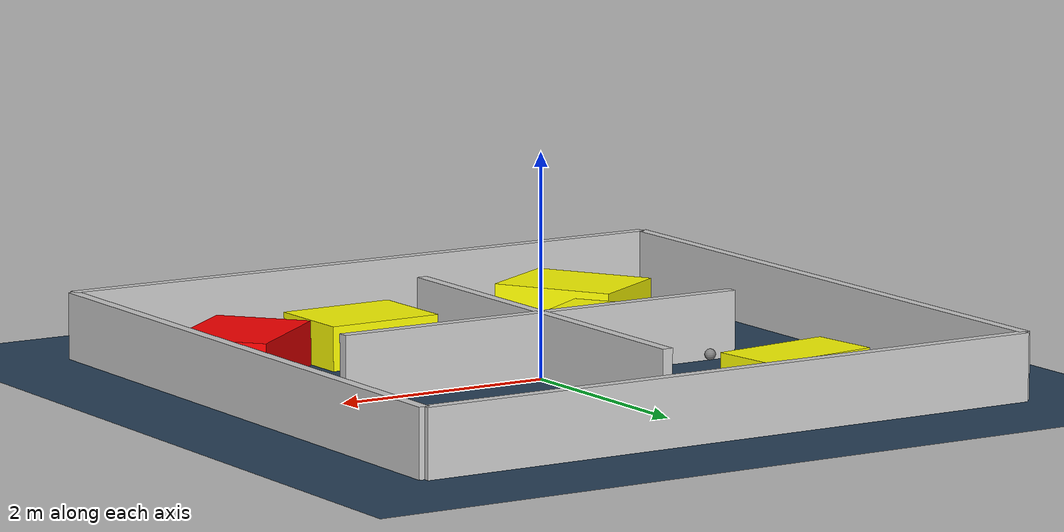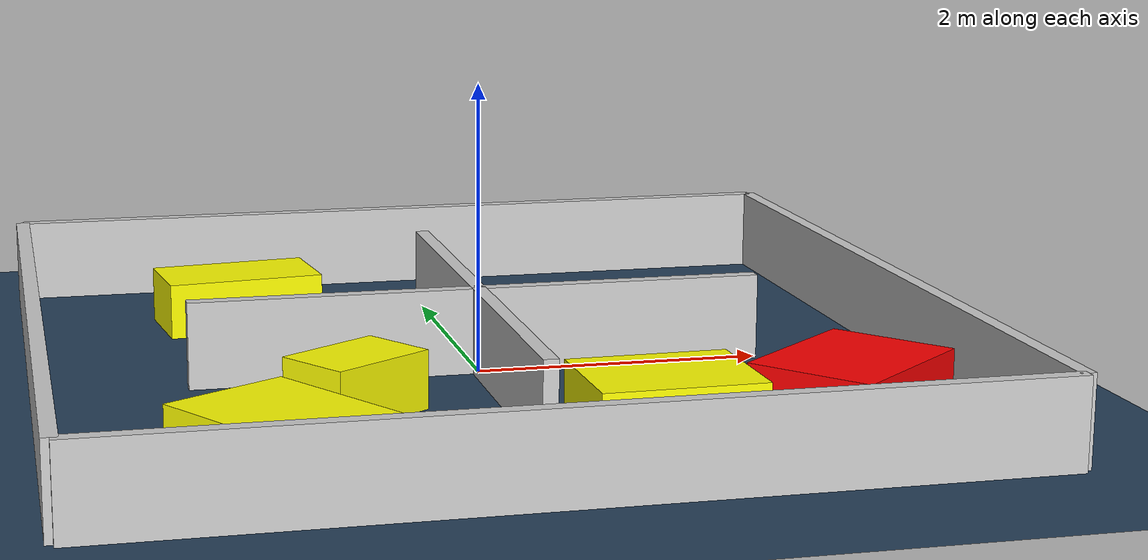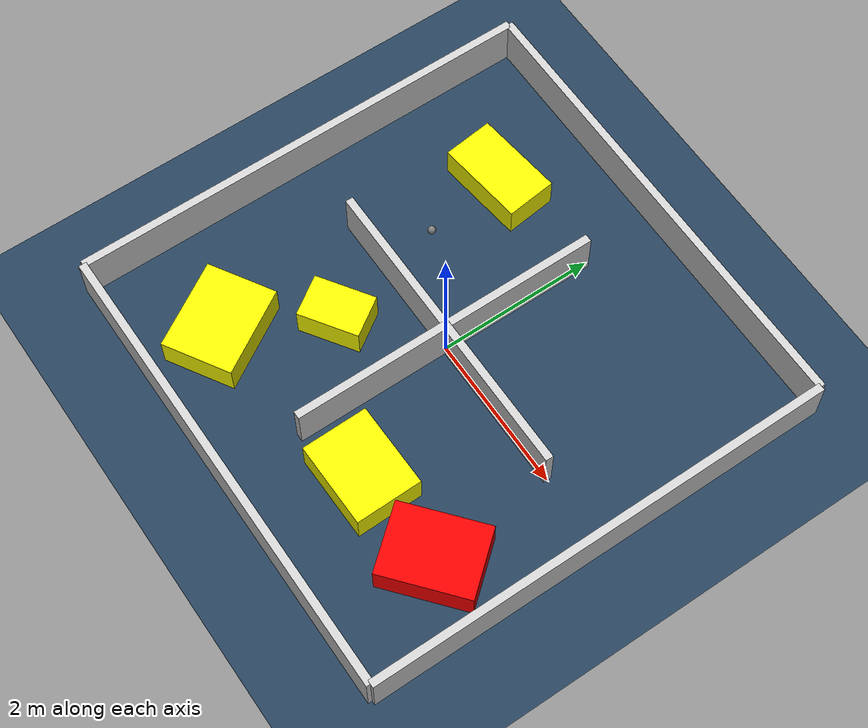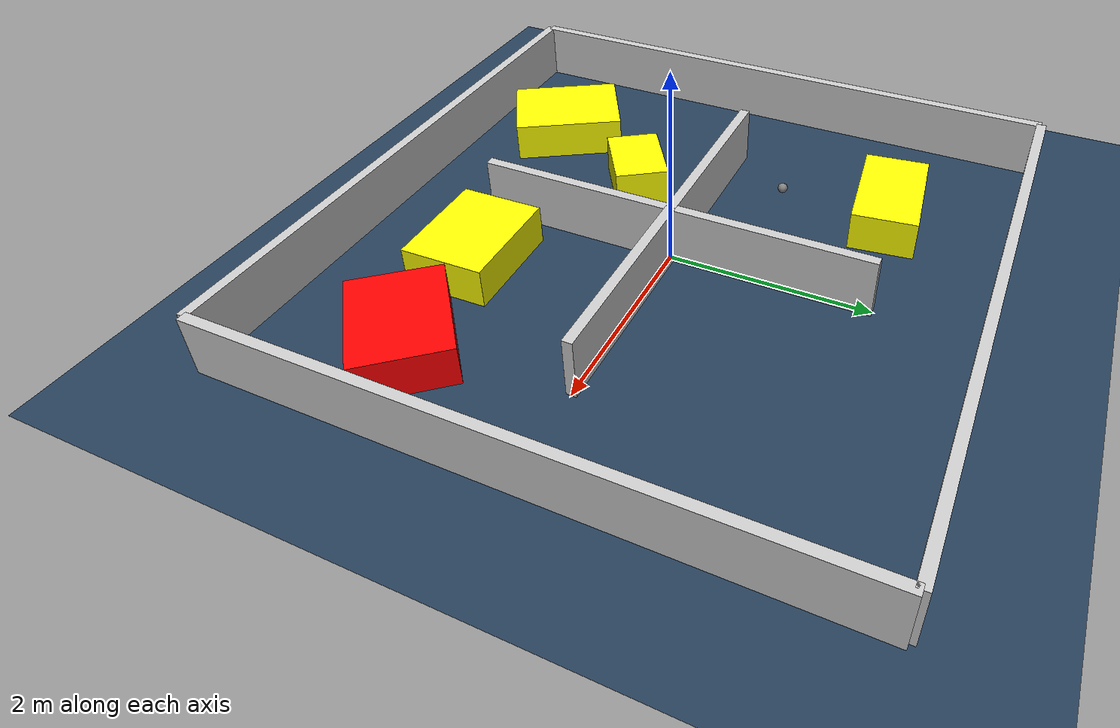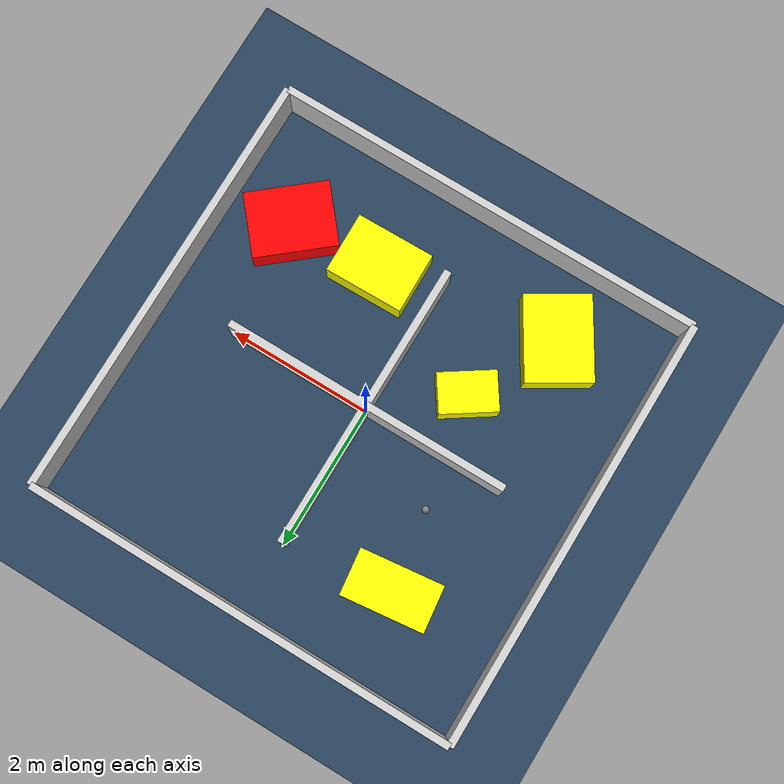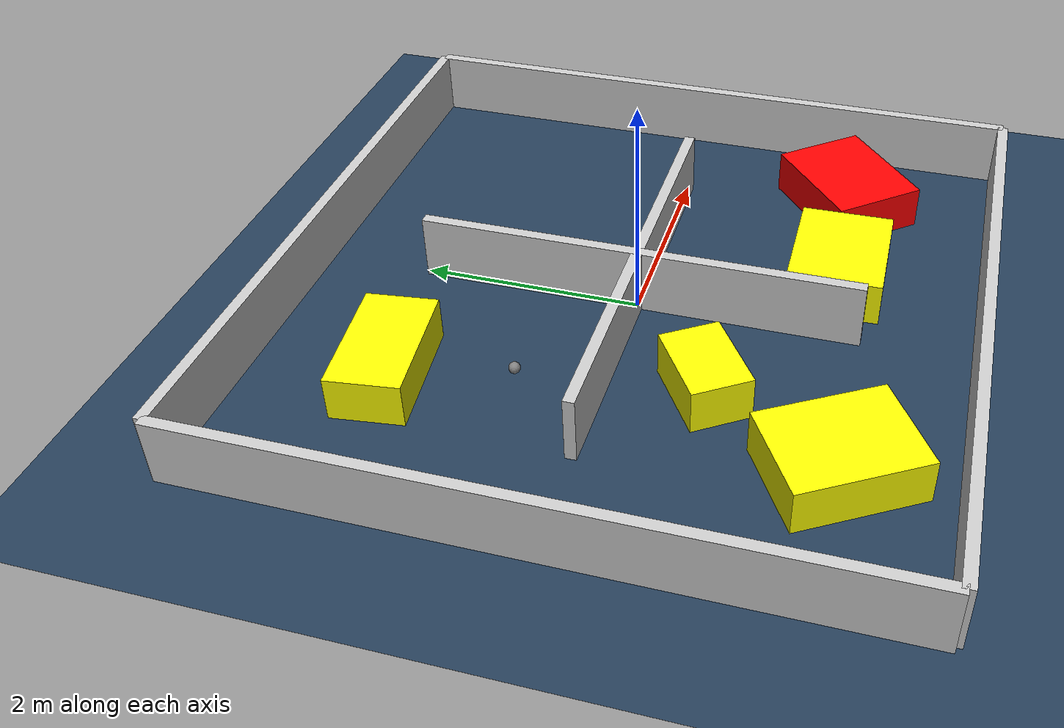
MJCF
<?xml version="1.0" ?>
<mujoco model="generated_environment">
  <option timestep="0.01" integrator="RK4" cone="elliptic"/>
  <default>
    <geom density="1"/>
  </default>
  <asset>
    <texture builtin="gradient" height="3072" rgb1="0.3 0.5 0.7" rgb2="0 0 0" type="skybox" width="512"/>
    <texture builtin="checker" height="300" mark="edge" markrgb="0.8 0.8 0.8" name="groundplane" rgb1="0.2 0.3 0.4" rgb2="0.1 0.2 0.3" type="2d" width="300"/>
    <material name="groundplane" reflectance="0.2" texrepeat="5 5" texture="groundplane" texuniform="true"/>
    <material name="robot" rgba="0.0 1.0 0.0 1"/>
  </asset>
  <worldbody>
    <light dir="0 0 -1" directional="true" pos="0 0 1.5"/>
    <geom condim="4" friction="1.0 0.005 0.001" material="groundplane" name="floor" size="0 0 0.05" type="plane"/>
    <body name="walls">
      <geom name="wall_1" condim="4" pos="-3.0 0.0 0.3" rgba="0.800000011920929 0.800000011920929 0.800000011920929 1.0" size="0.05 3.0 0.3" type="box"/>
      <geom name="wall_2" condim="4" pos="3.0 0.0 0.3" rgba="0.800000011920929 0.800000011920929 0.800000011920929 1.0" size="0.05 3.0 0.3" type="box"/>
      <geom name="wall_3" condim="4" pos="0.0 -3.0 0.3" rgba="0.800000011920929 0.800000011920929 0.800000011920929 1.0" size="3.0 0.05 0.3" type="box"/>
      <geom name="wall_4" condim="4" pos="0.0 3.0 0.3" rgba="0.800000011920929 0.800000011920929 0.800000011920929 1.0" size="3.0 0.05 0.3" type="box"/>
      <geom name="wall_5" condim="4" pos="1.0 0.0 0.3" rgba="0.800000011920929 0.800000011920929 0.800000011920929 1.0" size="1.0 0.05 0.3" type="box"/>
      <geom name="wall_6" condim="4" pos="-1.0 0.0 0.3" rgba="0.800000011920929 0.800000011920929 0.800000011920929 1.0" size="1.0 0.05 0.3" type="box"/>
      <geom name="wall_7" condim="4" pos="0.0 -1.0 0.3" rgba="0.800000011920929 0.800000011920929 0.800000011920929 1.0" size="0.05 1.0 0.3" type="box"/>
      <geom name="wall_8" condim="4" pos="0.0 1.0 0.3" rgba="0.800000011920929 0.800000011920929 0.800000011920929 1.0" size="0.05 1.0 0.3" type="box"/>
    </body>
    <body name="robot">
      <joint name="joint_x" type="slide" pos="0 0 0" axis="1 0 0"/>
      <joint name="joint_y" type="slide" pos="0 0 0" axis="0 1 0"/>
      <geom name="robot" type="sphere" pos="-1.306067140753359 0.694680901423367 0.2" size="0.05" mass="5." friction="1.0 0.005 0.0001" condim="4"/>
      <site name="sensor_ball"/>
    </body>
    <body name="obstacle_1_movable">
      <geom name="obstacle_1_movable" condim="4" pos="0.8232473647907979 -1.6878948744441415 0.2" euler="0 0 270.9581451422366" friction="1.0 0.005 0.001" rgba="1 1 0 1" size="0.42114053009543 0.5421213105813305 0.2" type="box" mass="0.1"/>
      <joint type="free"/>
    </body>
    <body name="obstacle_2_movable">
      <geom name="obstacle_2_movable" condim="4" pos="-1.4608178715563032 1.7757726242887668 0.2" euler="0 0 276.84191331003564" friction="1.0 0.005 0.001" rgba="1 1 0 1" size="0.32264844406758686 0.5704074682147446 0.2" type="box" mass="0.1"/>
      <joint type="free"/>
    </body>
    <body name="obstacle_3_static">
      <geom name="obstacle_3_static" condim="4" pos="2.0952486862367037 -1.5892397189333307 0.2" euler="0 0 219.93170579624993" friction="1.0 0.005 0.001" rgba="1 0 0 1" size="0.5653770080804158 0.4407605218003514 0.2" type="box"/>
    </body>
    <body name="obstacle_4_movable">
      <geom name="obstacle_4_movable" condim="4" pos="-0.9962801622854689 -0.8364016923696074 0.2" euler="0 0 123.81791402235268" friction="1.0 0.005 0.001" rgba="1 1 0 1" size="0.2711098526931043 0.3880876644927066 0.2" type="box" mass="0.1"/>
      <joint type="free"/>
    </body>
    <body name="obstacle_5_movable">
      <geom name="obstacle_5_movable" condim="4" pos="-1.6242234546802816 -2.0265993932976727 0.2" euler="0 0 211.31471265194696" friction="1.0 0.005 0.001" rgba="1 1 0 1" size="0.4476165988418568 0.5752174878107972 0.2" type="box" mass="0.1"/>
      <joint type="free"/>
    </body>
  </worldbody>
  <actuator>
    <motor name="actuator_x" joint="joint_x" gear="1" ctrlrange="-1 1"/>
    <motor name="actuator_y" joint="joint_y" gear="1" ctrlrange="-1 1"/>
  </actuator>
</mujoco>
